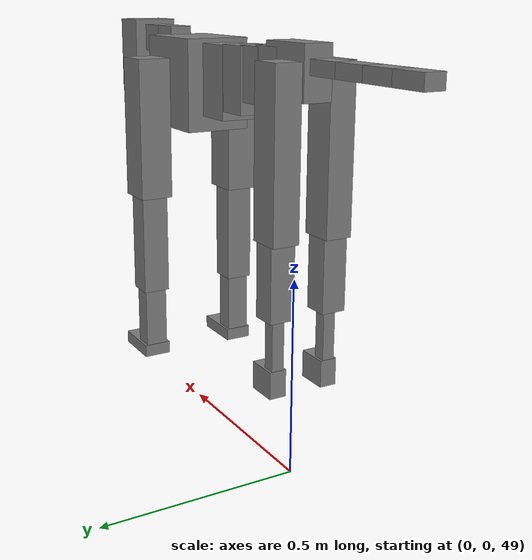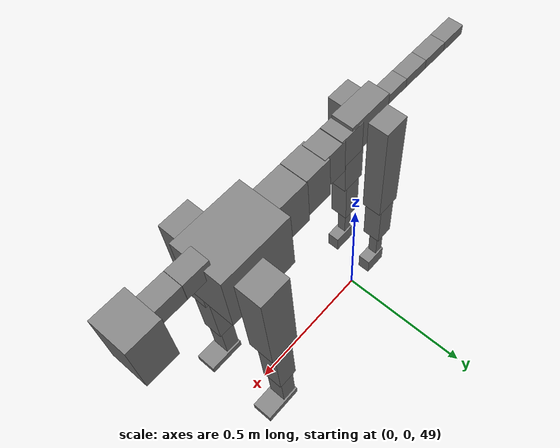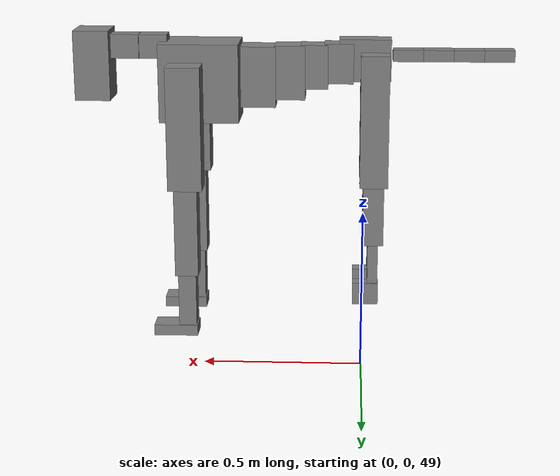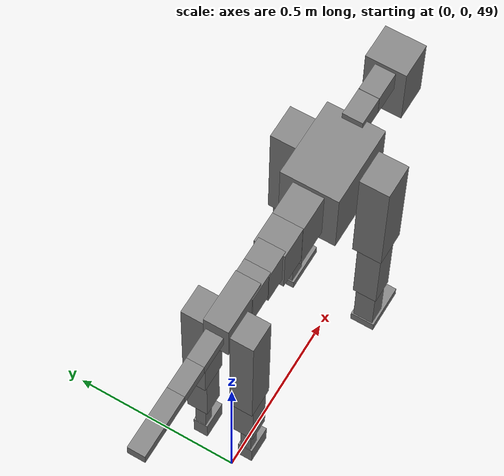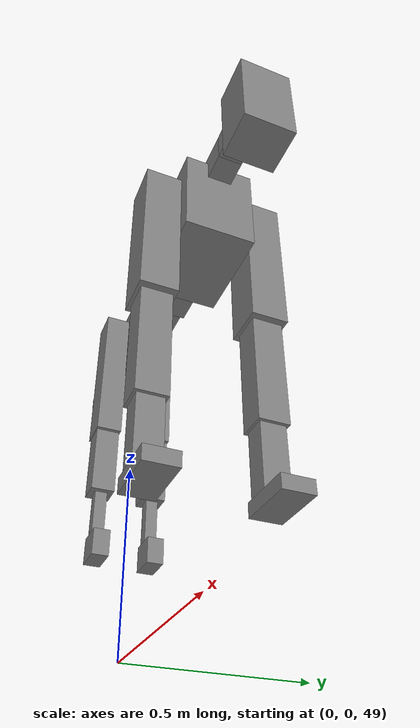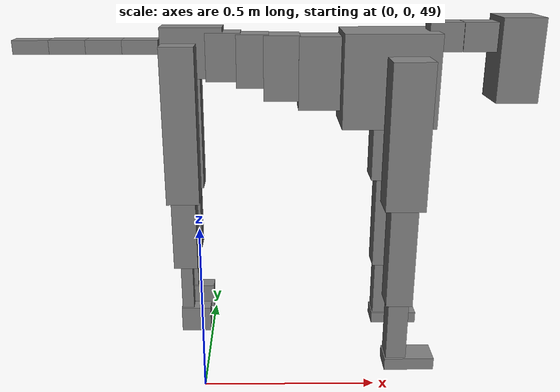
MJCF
<mujoco model="dog">

    <default>
        <joint armature="0.02" stiffness="1" damping="0.2" limited="true"/>
        <geom condim="3" friction="1 0.05 0.05" margin="0.01"/>
        <motor ctrllimited="true" ctrlrange="-1.0 1.0" forcelimited="true" gear="50"/>
    </default>

    <compiler inertiafromgeom="true" angle="radian"/>

    <option timestep="0.016" iterations="50" tolerance="1e-10" solver="Newton" jacobian="dense" cone="pyramidal"/>

    <size nconmax="20000" njmax="60000" nstack="5000000"/>
    <visual>
        <map force="0.1" zfar="30"/>
        <rgba haze="0.15 0.25 0.35 1"/>
        <quality shadowsize="2048"/>
        <global offwidth="800" offheight="800"/>
    </visual>

    <asset>
        <texture type="skybox" builtin="gradient" rgb1="0.3 0.5 0.7" rgb2="0 0 0" width="512" height="512"/>
        <texture name="texplane" type="2d" builtin="checker" rgb1=".2 .3 .4" rgb2=".1 0.15 0.2" width="512" height="512"
                 mark="cross" markrgb=".8 .8 .8"/>
        <texture name="texgeom" type="cube" builtin="flat" mark="cross" width="127" height="1278" rgb1="0.8 0.6 0.4"
                 rgb2="0.8 0.6 0.4" markrgb="1 1 1" random="0.01"/>

        <material name="matplane" reflectance="0.3" texture="texplane" texrepeat="1 1" texuniform="true"/>
        <material name="matgeom" texture="texgeom" texuniform="true" rgba="0.8 0.6 .4 1"/>
    </asset>

    <worldbody>
        <geom name="floor" pos="0 0 0" size="0 0 .25" type="plane" material="matplane" condim="3"/>

        <light directional="false" diffuse=".2 .2 .2" specular="0 0 0" pos="0 0 5" dir="0 0 -1" castshadow="false"/>
        <light mode="targetbodycom" target="torso" directional="false" diffuse=".8 .8 .8" specular="0.3 0.3 0.3"
               pos="0 0 4.0" dir="0 0 -1"/>

        <body name="root" pos="0 0 50">
            <freejoint name="root_1"/>
            <geom type="box" pos="0 0 -0.02" size="0.0774  0.0358  0.063" density="2030"/>

            <body name="spine1" pos="0.054 0 0">
                <joint name="spine1_y" axis="0 1 0" range="0 0.7" limited="true"/>
                <geom type="box" pos="0.02375 0 -0.03" size="0.04375  0.0375  0.05985" density="2030"/>

                <body name="spine2" pos="0.0612 0 0">
                    <joint name="spine2_y" axis="0 1 0" range="-0.15 0.15" limited="true"/>
                    <geom type="box" pos="0.03555  0  -0.04" size="0.04055  0.039  0.06615" density="2030"/>

                    <body name="spine3" pos="0.0730 0 0">
                        <joint name="spine3_y" axis="0 1 0" range="-0.15 0.15" limited="true"/>
                        <geom type="box" pos="0.03555  0  -0.057" size="0.04555  0.0445  0.081" density="2030"/>

                        <body name="spine4" pos="0.0780 0 0">
                            <joint name="spine4_y" axis="0 1 0" range="-0.15 0.15" limited="true"/>
                            <geom type="box" pos="0.05265  0  -0.07" size="0.05265  0.045  0.09135" density="2030"/>

                            <body name="torso" pos="0.1082 0 0">
                                <joint name="torso_y" axis="0 1 0" range="-0.15 0.15" limited="true"/>
                                <geom type="box" pos="0.11925  0  -0.085" size="0.11925  0.085  0.11745"
                                      density="2030"/>

                                <body name="neck1" pos="0.2160  0   0.0180">
                                    <joint name="neck1_y" axis="0 1 0" range="-1.2  -1" limited="true"/>
                                    <geom type="box" pos="0.0423  0  0" size="0.0423  0.03  0.036" density="2325"/>

                                    <body name="neck2" pos="0.0853  0  0">
                                        <joint name="neck2_y" axis="0 1 0" range="0.1  0" limited="true"/>
                                        <geom type="box" pos="0.0423  0  0" size="0.0423  0.03  0.036" density="2325"/>

                                        <body name="head" pos="0.0853  0  0">
                                            <joint name="head_y" axis="0 1 0" range="-0.3  -0.2" limited="true"/>
                                            <geom type="box" pos="0.0531  0  -0.055" size="0.0531  0.06  0.1044"
                                                  density="4030"/>

                                        </body>
                                    </body>
                                </body>

                                <body name="front_shoulder" pos="0.156  0   -0.0480">
                                    <joint name="front_shoulder_y" axis="0 1 0" range="-1 1.5" limited="true"/>
                                    <geom type="box" pos="0 0.13 -0.1579" size="0.0509  0.0435  0.1845" density="1158"/>
                                    <geom type="box" pos="0 -0.13 -0.1579" size="0.0509  0.0435  0.1845"
                                          density="1158"/>

                                    <body name="front_elbow" pos="0  0  -0.3158">
                                        <joint name="front_elbow_y" axis="0 1 0" range="-2 0" limited="true"/>
                                        <geom type="box" pos="0 0.13 -0.1461" size="0.0349  0.0357  0.1461"
                                              density="1081"/>
                                        <geom type="box" pos="0 -0.13 -0.1461" size="0.0349  0.0357  0.1461"
                                              density="1081"/>

                                        <body name="front_wrist" pos="0  0  -0.2923">
                                            <joint name="front_wrist_y" axis="0 1 0" range="-0.2 0" limited="true"/>
                                            <geom type="box" pos="0 0.13 -0.0864" size="0.0268  0.0298  0.0996"
                                                  density="1664"/>
                                            <geom type="box" pos="0 -0.13 -0.0864" size="0.0268  0.0298  0.0996"
                                                  density="1664"/>

                                            <body name="front_finger_end" pos="0  0  -0.1729">
                                                <joint name="front_finger_y" axis="0 1 0" range="-0.4 1"
                                                       limited="true"/>
                                                <geom type="box" pos="0.0362  0.13  -0.0015"
                                                      size="0.0663  0.0362  0.0165" density="1515"/>
                                                <geom type="box" pos="0.0362  -0.13  -0.0015"
                                                      size="0.0663  0.0362  0.0165" density="1515"/>

                                            </body>

                                        </body>
                                    </body>
                                </body>

                            </body>
                        </body>
                    </body>
                </body>
            </body>

            <body name="back_hip" pos="-0.03 0 -0.018">
                <joint name="back_hip_y" axis="0 1 0" range="-1.5 0.3" limited="true"/>
                <geom type="box" pos="0 0.07 -0.1765" size="0.0425  0.0333  0.1993" density="1154"/>
                <geom type="box" pos="0 -0.07 -0.1765" size="0.0425  0.0333  0.1993" density="1154"/>

                <body name="back_knee" pos="0  0  -0.3530">
                    <joint name="back_knee_y" axis="0 1 0" range="0 2.8" limited="true"/>
                    <geom type="box" pos="0 0.07 -0.0936" size="0.0313  0.0308  0.1091" density="1227"/>
                    <geom type="box" pos="0 -0.07 -0.0936" size="0.0313  0.0308  0.1091" density="1227"/>

                    <body name="back_ankle" pos="0  0  -0.1871">
                        <joint name="back_ankle_y" axis="0 1 0" range="-2.2 0" limited="true"/>
                        <geom type="box" pos="0 0.07 -0.0768" size="0.0157  0.0157  0.0880" density="1284"/>
                        <geom type="box" pos="0 -0.07 -0.0768" size="0.0157  0.0157  0.0880" density="1284"/>

                        <body name="back_toe_end" pos="0  0  -0.1535">
                            <joint name="back_toe_y" axis="0 1 0" range="-0.4 1" limited="true"/>
                            <geom type="box" pos="0.0213  0.07  -0.0187" size="0.0390  0.0213  0.0337" density="1515"/>
                            <geom type="box" pos="0.0213  -0.07  -0.0187" size="0.0390  0.0213  0.0337" density="1515"/>

                        </body>
                    </body>
                </body>
            </body>

            <body name="tail1" pos="-0.074 0 -0.006">
                <joint name="tail1_y" axis="0 1 0" range="-0.2 0.2" limited="true"/>
                <geom type="box" pos="-0.0536  0  0" size="0.045  0.025  0.0175" density="1587"/>

                <body name="tail2" pos="-0.09 0 0">
                    <joint name="tail2_y" axis="0 1 0" range="-0.2 0.2" limited="true"/>
                    <geom type="box" pos="-0.0536  0  0" size="0.045  0.025  0.0175" density="1587"/>

                    <body name="tail3" pos="-0.09 0 0">
                        <joint name="tail3_y" axis="0 1 0" range="-0.2 0.2" limited="true"/>
                        <geom type="box" pos="-0.0536  0  0" size="0.045  0.025  0.0175" density="1587"/>

                        <body name="tail4" pos="-0.09 0 0">
                            <joint name="tail4_y" axis="0 1 0" range="-0.2 0.2" limited="true"/>
                            <geom type="box" pos="-0.0536  0  0" size="0.045  0.025  0.0175" density="1587"/>

                        </body>
                    </body>
                </body>
            </body>
        </body>
    </worldbody>

    <actuator>
        <motor joint="spine1_y" forcerange="-150 150     "/>
        <motor joint="spine2_y" forcerange="-150 150     "/>
        <motor joint="spine3_y" forcerange="-150 150     "/>
        <motor joint="spine4_y" forcerange="-150 150     "/>
        <motor joint="torso_y" forcerange="-150 150     "/>
        <motor joint="neck1_y" forcerange="-100 100       "/>
        <motor joint="neck2_y" forcerange="-100 100       "/>
        <motor joint="head_y" forcerange="-150 150       "/>
        <motor joint="front_shoulder_y" forcerange="-199.89 189.97"/>
        <motor joint="front_elbow_y" forcerange="-194.85 164.59"/>
        <motor joint="front_wrist_y" forcerange="-102.24 136.23"/>
        <motor joint="front_finger_y" forcerange="-66.45 86.40"/>
        <motor joint="back_hip_y" forcerange="-249.07 395.52"/>
        <motor joint="back_knee_y" forcerange="-323.30 325.31"/>
        <motor joint="back_angle_y" forcerange="-74.45 76.71"/>
        <motor joint="back_toe_y" forcerange="-64.36 25.69"/>
        <motor joint="tail1_y" forcerange="-50 50     "/>
        <motor joint="tail2_y" forcerange="-50 50     "/>
        <motor joint="tail3_y" forcerange="-50 50     "/>
        <motor joint="tail4_y" forcerange="-50 50     "/>
    </actuator>
</mujoco>
